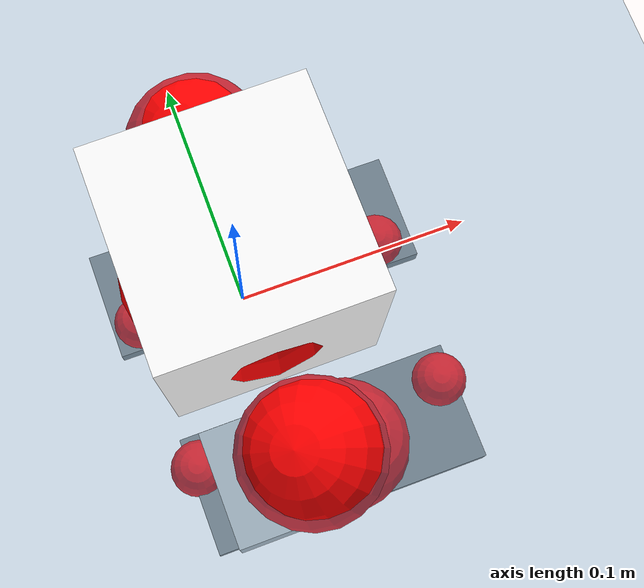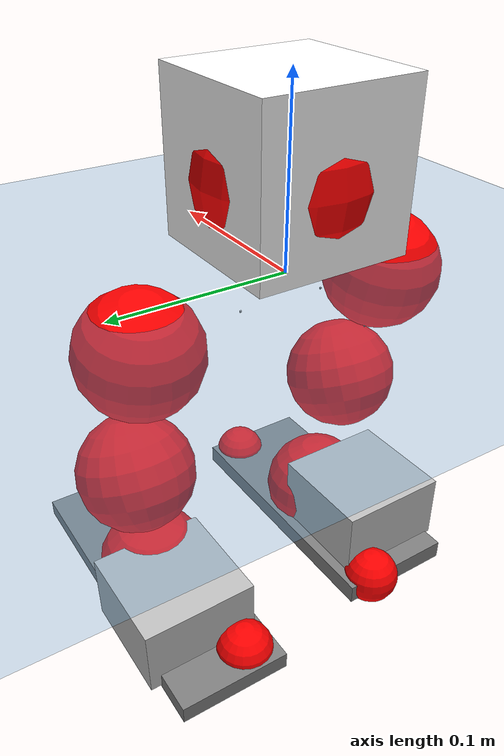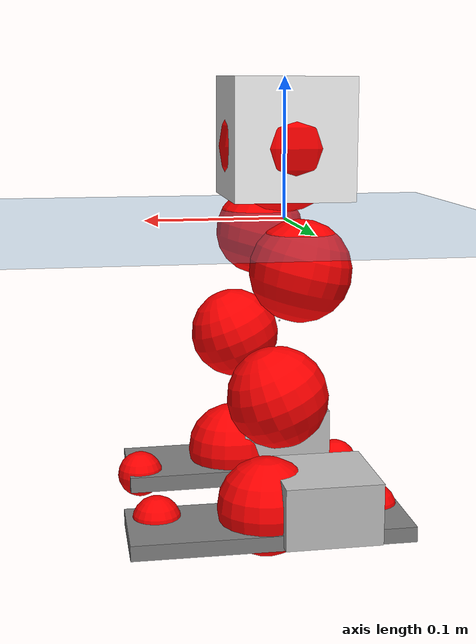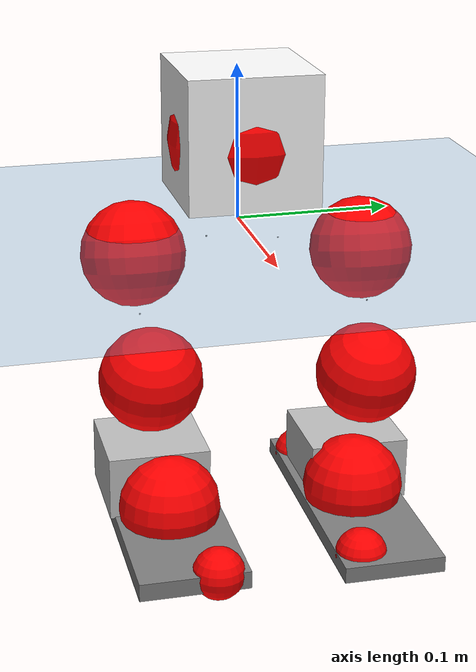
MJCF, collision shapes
<mujoco model="pi_12dof_release_v1">
  <compiler angle="radian" assetdir="assets" balanceinertia="true" inertiafromgeom="false"/>

  <option timestep="0.005" density="1.2" viscosity="2e-05"/>

  <size nkey="1"/>

  <visual>
    <quality shadowsize="8192"/>
    <map shadowclip="0.5"/>
  </visual>

  <default>
    <default class="/">
      <joint armature="0.01" damping="0.01" frictionloss="0.01"/>
      <geom contype="0" conaffinity="0" group="1" solref="-1000 -80"/>
      <site size="0.01 0.005 0.005" group="5"/>
      <general forcelimited="true" biastype="affine" gainprm="20" biasprm="0 -20 -0.5"/>
      <default class="foot">
        <geom size="0.0845 0.036 0.005" type="box" condim="6" group="4" priority="1" friction="0.9 0.2 0.2" solimp="0.015 1 0.005"/>
      </default>
      <default class="reward_collision_sphere">
        <geom group="5" rgba="1 0 0 1"/>
      </default>
    </default>
  </default>

  <asset>
    <texture type="skybox" colorspace="auto" name="//unnamed_texture_0" builtin="gradient" rgb1="0.95 0.95 0.95" rgb2="0.95 0.95 0.95" width="100" height="600"/>
    <texture type="2d" colorspace="auto" name="texplane" builtin="checker" rgb1="0.345 0.575 0.748" rgb2="0.345 0.575 0.748" markrgb="1 1 1" width="512" height="512"/>
    <material name="MatPlane" class="/" texture="texplane" texuniform="true" texrepeat="2 2" specular="0.9"/>
    <mesh name="baselink_1" class="/" file="baselink_1.STL"/>
    <mesh name="r_hip_pitch_link" class="/" file="r_hip_pitch_link.STL"/>
    <mesh name="r_hip_roll_link" class="/" file="r_hip_roll_link.STL"/>
    <mesh name="r_thigh_link" class="/" file="r_thigh_link.STL"/>
    <mesh name="r_calf_link" class="/" file="r_calf_link.STL"/>
    <mesh name="r_ankle_pitch_link" class="/" file="r_ankle_pitch_link.STL"/>
    <mesh name="r_ankle_roll_link" class="/" file="r_ankle_roll_link.STL"/>
    <mesh name="l_hip_pitch_link" class="/" file="l_hip_pitch_link.STL"/>
    <mesh name="l_hip_roll_link" class="/" file="l_hip_roll_link.STL"/>
    <mesh name="l_thigh_link" class="/" file="l_thigh_link.STL"/>
    <mesh name="l_calf_link" class="/" file="l_calf_link.STL"/>
    <mesh name="l_ankle_pitch_link" class="/" file="l_ankle_pitch_link.STL"/>
    <mesh name="l_ankle_roll_link" class="/" file="l_ankle_roll_link.STL"/>
  </asset>

  <worldbody>
    <geom name="floor" class="/" size="100 100 0.125" type="plane" group="0" material="MatPlane"/>
    <light name="toplight_shadow" class="/" pos="0 0 5" dir="0.0990148 0.0990148 -0.990148" type="directional" ambient="0.04 0.04 0.04" diffuse="0.55 0.55 0.55" specular="0.12 0.12 0.12"/>
    <light name="toplight_fill" class="/" pos="0 0 5" dir="0.0990148 0.0990148 -0.990148" type="directional" castshadow="false" ambient="0.04 0.04 0.04" diffuse="0.3 0.3 0.3" specular="0.08 0.08 0.08"/>
    <body name="trunk" pos="0.000867569 0.00123926 0.0107786" quat="0.999988 -0.00408982 -0.00120246 0.00238442">
      <inertial pos="0.00489435 -0.00817264 0.0251912" quat="0.664691 -0.00748015 -0.00325979 0.747074" mass="1.21423" diaginertia="0.0151192 0.00292199 0.000252245"/>
      <joint name="//unnamed_joint_0" type="free"/>
      <geom name="//unnamed_geom_1" class="/" type="mesh" density="0" rgba="1 1 1 1" mesh="baselink_1"/>
      <geom name="//unnamed_geom_2" class="/" size="0.0422912 0.0422912 0.0422912" pos="0 0 0.0468998" type="box" rgba="1 1 1 1"/>
      <geom name="//unnamed_geom_3" class="reward_collision_sphere" size="0.0465203" pos="0 0 0.0410373"/>
      <site name="imu" class="/" pos="-3.76966e-05 -0.0246747 0.0369364" size="0.00845823"/>
      <camera name="track" class="/" pos="0 -1.64617 0" quat="0.707107 0.707107 0 0" mode="trackcom"/>
      <camera name="ego_camera" class="/" pos="0.0846104 0 0.105524" quat="-0.5 -0.5 0.5 0.5"/>
      <body name="r_hip_pitch_link" pos="-0.00500828 -0.0210033 -0.0231174" quat="0.992181 -9.86637e-05 -0.124808 -0.000125674">
        <inertial pos="0.010296 -0.0477508 0.0102293" quat="-0.0692857 0.708009 -0.0137829 0.702661" mass="0.237566" diaginertia="0.000192354 3.98978e-05 6.13651e-06"/>
        <joint name="r_hip_pitch_joint" class="/" pos="0 0 0" axis="-0.0126048 -0.999911 -0.00446848" stiffness="0.0157428" range="-1.74463 1.26742" armature="0.00862683" damping="0.030417" frictionloss="0.00861923"/>
        <geom name="//unnamed_geom_4" class="/" type="mesh" density="0" rgba="0.75294 0.75294 0.75294 1" mesh="r_hip_pitch_link"/>
        <geom name="//unnamed_geom_5" class="/" size="0.000422912 0.000422912 0.000422912" type="box" rgba="0.75294 0.75294 0.75294 1"/>
        <body name="r_hip_roll_link" pos="0.00791425 -0.0498415 -0.00718242" quat="0.999999 0.0011519 0.000647938 -0.000482528">
          <inertial pos="0.00405502 -2.73558e-05 -0.0387613" quat="0.70231 -0.0832652 -0.0885223 0.701421" mass="0.258768" diaginertia="0.000675244 0.00011661 1.08142e-05"/>
          <joint name="r_hip_roll_joint" class="/" pos="0 0 0" axis="-0.99945 0.0313581 0.0108045" stiffness="0.0069827" range="-0.103432 0.463204" armature="0.0133297" damping="0.0124699" frictionloss="0.0062499"/>
          <geom name="//unnamed_geom_6" class="/" type="mesh" density="0" rgba="0.75294 0.75294 0.75294 1" mesh="r_hip_roll_link"/>
          <geom name="//unnamed_geom_7" class="/" size="0.000422912 0.000422912 0.000422912" type="box" rgba="0.75294 0.75294 0.75294 1"/>
          <geom name="//unnamed_geom_8" class="reward_collision_sphere" size="0.0338329"/>
          <body name="r_thigh_link" pos="-0.00422295 0.00249752 -0.0394774" quat="0.999999 0.000683207 -0.000853476 -0.00120599">
            <inertial pos="0.0120615 0.0110788 -0.0309873" quat="0.734803 0.678236 -0.00200209 -0.00747387" mass="0.0679219" diaginertia="0.000249862 3.55036e-05 3.85872e-06"/>
            <joint name="r_thigh_joint" class="/" pos="0 0 0" axis="6.0759e-06 -6.30672e-05 -1" range="-0.222946 0.42868" armature="0.0126885" damping="0" frictionloss="0.0083331"/>
            <geom name="//unnamed_geom_9" class="/" type="mesh" density="0" rgba="0.75294 0.75294 0.75294 1" mesh="r_thigh_link"/>
            <geom name="//unnamed_geom_10" class="/" size="0.000422912 0.000422912 0.000422912" type="box" rgba="0.75294 0.75294 0.75294 1"/>
            <body name="r_calf_link" pos="0.00447637 0.00366863 -0.0420911" quat="0.946286 -0.00342423 0.323311 0.00130991">
              <inertial pos="0.00219696 -6.65897e-05 -0.0386412" quat="0.998599 0.0212771 -0.0482159 -0.00478363" mass="0.433206" diaginertia="0.00657869 0.00131912 1.24348e-05"/>
              <joint name="r_calf_joint" class="/" pos="0 0 0" axis="-0.00193997 -0.999994 -0.00270968" stiffness="0.00790178" range="-1.6761 0.562455" armature="0.00826988" damping="0.0217467" frictionloss="0.00901726"/>
              <geom name="//unnamed_geom_11" class="/" type="mesh" density="0" rgba="0.75294 0.75294 0.75294 1" mesh="r_calf_link"/>
              <geom name="//unnamed_geom_12" class="/" size="0.000422912 0.000422912 0.000422912" type="box" rgba="0.75294 0.75294 0.75294 1"/>
              <geom name="//unnamed_geom_13" class="reward_collision_sphere" size="0.0338329"/>
              <body name="r_ankle_pitch_link" pos="-0.00124605 0.00539324 -0.0846477" quat="0.980304 -0.00105132 -0.197493 0.000198187">
                <inertial pos="0.00889746 0.00366267 0.00172823" quat="0.00782534 0.708467 -0.00379083 0.705691" mass="0.0968348" diaginertia="0.000574408 9.19236e-05 7.96023e-06"/>
                <joint name="r_ankle_pitch_joint" class="/" pos="0 0 0" axis="0.0247082 -0.999611 -0.0129574" range="-1.20849 0.514884" armature="0.00957403" damping="0" frictionloss="0.00864551"/>
                <geom name="//unnamed_geom_14" class="/" type="mesh" density="0" rgba="0.75294 0.75294 0.75294 1" mesh="r_ankle_pitch_link"/>
                <geom name="//unnamed_geom_15" class="/" size="0.0329871 0.0338329 0.0211456" type="box" rgba="0.75294 0.75294 0.75294 1"/>
                <body name="r_ankle_roll_link" pos="0.0952351 0.00486262 -0.000282373" quat="1 -5.45637e-05 2.04599e-05 -0.000144826">
                  <inertial pos="-0.026241 0.00961653 -0.0161971" quat="0.545751 0.455616 0.391297 0.584343" mass="0.349475" diaginertia="0.00226866 0.00038815 2.34764e-05"/>
                  <joint name="r_ankle_roll_joint" class="/" pos="0 0 0" axis="-0.99993 0.0117721 -0.00101552" range="0.0833017 0.052193" armature="0.0122154" damping="0.0175405" frictionloss="0.0126427"/>
                  <geom name="//unnamed_geom_16" class="/" type="mesh" density="0" rgba="0.75294 0.75294 0.75294 1" mesh="r_ankle_roll_link"/>
                  <geom name="//unnamed_geom_17" class="/" type="mesh" rgba="0.75294 0.75294 0.75294 1" mesh="r_ankle_roll_link"/>
                  <geom name="right_foot" class="foot" size="0.083307 0.0355975 0.00588356" pos="-0.0575351 0 -0.0257949"/>
                  <geom name="//unnamed_geom_19" class="reward_collision_sphere" size="0.0338329" pos="-0.056407 0 -0.0117249"/>
                  <geom name="//unnamed_geom_20" class="reward_collision_sphere" size="0.0169165" pos="0.0169221 0.0164617 -0.0234499"/>
                  <geom name="//unnamed_geom_21" class="reward_collision_sphere" size="0.0169165" pos="-0.135377 0.0164617 -0.0234499"/>
                  <site name="right_foot" class="foot" pos="-0.0575351 0 -0.0257949" size="0.00845823"/>
                </body>
              </body>
            </body>
          </body>
        </body>
      </body>
      <body name="l_hip_pitch_link" pos="0.000229049 0.0253761 -0.0258117" quat="0.992256 0.000239755 -0.124205 0.000673511">
        <inertial pos="0.0024892 0.054007 0.0106257" quat="-0.049428 0.703416 0.0368791 0.708098" mass="0.246747" diaginertia="0.000260551 4.06721e-05 8.06998e-06"/>
        <joint name="l_hip_pitch_joint" class="/" pos="0 0 0" axis="-0.0308362 0.999085 -0.0296299" stiffness="0.0322273" range="-1.03594 1.83686" armature="0.00821172" damping="0.0401311" frictionloss="0.00664227"/>
        <geom name="//unnamed_geom_22" class="/" type="mesh" density="0" rgba="0.75294 0.75294 0.75294 1" mesh="l_hip_pitch_link"/>
        <geom name="//unnamed_geom_23" class="/" size="0.000422912 0.000422912 0.000422912" type="box" rgba="0.75294 0.75294 0.75294 1"/>
        <body name="l_hip_roll_link" pos="0.00231693 0.0552724 -0.0103865" quat="0.999994 -0.00321432 -0.000745841 0.000783348">
          <inertial pos="-0.0137435 0.00693049 -0.0243435" quat="0.699482 -0.0754884 -0.0771447 0.706452" mass="0.195548" diaginertia="0.000454022 8.98175e-05 6.97651e-06"/>
          <joint name="l_hip_roll_joint" class="/" pos="0 0 0" axis="-0.999994 -0.00176636 -0.00290592" stiffness="0.00674467" range="-0.495652 0.214463" armature="0.0109451" damping="0" frictionloss="0.00836961"/>
          <geom name="//unnamed_geom_24" class="/" type="mesh" density="0" rgba="0.75294 0.75294 0.75294 1" mesh="l_hip_roll_link"/>
          <geom name="//unnamed_geom_25" class="/" size="0.000422912 0.000422912 0.000422912" type="box" rgba="0.75294 0.75294 0.75294 1"/>
          <geom name="//unnamed_geom_26" class="reward_collision_sphere" size="0.0338329"/>
          <body name="l_thigh_link" pos="0.00556408 0.00120004 -0.0347136" quat="0.999993 -0.00278572 0.00246022 9.01802e-06">
            <inertial pos="0.0104792 -0.00722916 -0.0169341" quat="0.645383 0.763471 0.0116616 0.0213779" mass="0.0752973" diaginertia="0.000247958 4.06577e-05 4.16871e-06"/>
            <joint name="l_thigh_joint" class="/" pos="0 0 0" axis="0.00161648 0.000739447 -0.999998" stiffness="0.0019529" range="-0.640938 0.27623" armature="0.00918322" damping="0.00920614" frictionloss="0.00372899"/>
            <geom name="//unnamed_geom_27" class="/" type="mesh" density="0" rgba="0.75294 0.75294 0.75294 1" mesh="l_thigh_link"/>
            <geom name="//unnamed_geom_28" class="/" size="0.000422912 0.000422912 0.000422912" type="box" rgba="0.75294 0.75294 0.75294 1"/>
            <body name="l_calf_link" pos="-0.0118203 0.00135771 -0.0501872" quat="0.947752 0.000236391 0.319007 0.000213814">
              <inertial pos="0.00811741 0.00820726 -0.0466747" quat="0.998726 0.0158198 -0.0423524 0.0224147" mass="0.48994" diaginertia="0.00486613 0.00116869 9.89141e-06"/>
              <joint name="l_calf_joint" class="/" pos="0 0 0" axis="-0.0143214 0.999764 0.0163605" stiffness="0.0394202" range="-0.47586 1.45947" armature="0.00814072" damping="0.0345405" frictionloss="0.00605224"/>
              <geom name="//unnamed_geom_29" class="/" type="mesh" density="0" rgba="0.75294 0.75294 0.75294 1" mesh="l_calf_link"/>
              <geom name="//unnamed_geom_30" class="/" size="0.000422912 0.000422912 0.000422912" type="box" rgba="0.75294 0.75294 0.75294 1"/>
              <geom name="//unnamed_geom_31" class="reward_collision_sphere" size="0.0338329"/>
              <body name="l_ankle_pitch_link" pos="-0.000997515 -0.00144749 -0.0811385" quat="0.97998 0.000253302 -0.199095 0.00017992">
                <inertial pos="0.00230861 0.00359761 0.00901095" quat="-0.00655347 0.692957 -0.0191684 0.720694" mass="0.12402" diaginertia="0.000512317 8.38247e-05 8.40032e-06"/>
                <joint name="l_ankle_pitch_joint" class="/" pos="0 0 0" axis="-0.00138795 0.999996 0.00232399" range="-0.389269 1.34228" armature="0.00999755" damping="0.0629502" frictionloss="0.0116368"/>
                <geom name="//unnamed_geom_32" class="/" type="mesh" density="0" rgba="0.75294 0.75294 0.75294 1" mesh="l_ankle_pitch_link"/>
                <geom name="//unnamed_geom_33" class="/" size="0.0329871 0.0338329 0.0211456" type="box" rgba="0.75294 0.75294 0.75294 1"/>
                <body name="l_ankle_roll_link" pos="0.0947715 -0.00712359 0.00705053" quat="0.999982 0.00433037 0.00084208 -0.00402444">
                  <inertial pos="-0.0293149 -0.00121411 -0.0104523" quat="0.570203 0.461266 0.432624 0.524346" mass="0.293633" diaginertia="0.00192408 0.000344727 2.05925e-05"/>
                  <joint name="l_ankle_roll_joint" class="/" pos="0 0 0" axis="-0.999991 -0.0019651 -0.00382602" stiffness="0.000371155" range="-0.148101 0.387997" armature="0.00833406" damping="0.0375446" frictionloss="0.0100883"/>
                  <geom name="//unnamed_geom_34" class="/" type="mesh" density="0" rgba="0.75294 0.75294 0.75294 1" mesh="l_ankle_roll_link"/>
                  <geom name="//unnamed_geom_35" class="/" type="mesh" rgba="0.75294 0.75294 0.75294 1" mesh="l_ankle_roll_link"/>
                  <geom name="left_foot" class="foot" size="0.0956819 0.033098 0.00526825" pos="-0.0575351 0 -0.0257949"/>
                  <geom name="//unnamed_geom_37" class="reward_collision_sphere" size="0.0338329" pos="-0.056407 0 -0.0117249"/>
                  <geom name="//unnamed_geom_38" class="reward_collision_sphere" size="0.0169165" pos="0.0169221 -0.0164617 -0.0234499"/>
                  <geom name="//unnamed_geom_39" class="reward_collision_sphere" size="0.0169165" pos="-0.135377 -0.0164617 -0.0234499"/>
                  <site name="left_foot" class="foot" pos="-0.0575351 0 -0.0257949" size="0.00845823"/>
                </body>
              </body>
            </body>
          </body>
        </body>
      </body>
    </body>
  </worldbody>

  <contact>
    <pair class="/" geom1="floor" geom2="right_foot" name="//unnamed_contact_1"/>
    <pair class="/" geom1="floor" geom2="left_foot" name="//unnamed_contact_0"/>
  </contact>

  <actuator>
    <general name="r_hip_pitch_joint" class="/" joint="r_hip_pitch_joint" forcerange="-12.0323 12.0323" gainprm="21.9162" biasprm="0 -21.9162 -0.521573"/>
    <general name="r_hip_roll_joint" class="/" joint="r_hip_roll_joint" forcerange="-25.3617 25.3617" gainprm="21.9162" biasprm="0 -21.9162 -0.521573"/>
    <general name="r_thigh_joint" class="/" joint="r_thigh_joint" forcerange="-17.0225 17.0225" gainprm="21.9162" biasprm="0 -21.9162 -0.521573"/>
    <general name="r_calf_joint" class="/" joint="r_calf_joint" forcerange="-9.85323 9.85323" gainprm="21.9162" biasprm="0 -21.9162 -0.521573"/>
    <general name="r_ankle_pitch_joint" class="/" joint="r_ankle_pitch_joint" forcerange="-19.8941 19.8941" gainprm="21.9162" biasprm="0 -21.9162 -0.521573"/>
    <general name="r_ankle_roll_joint" class="/" joint="r_ankle_roll_joint" forcerange="-25.2586 25.2586" gainprm="21.9162" biasprm="0 -21.9162 -0.521573"/>
    <general name="l_hip_pitch_joint" class="/" joint="l_hip_pitch_joint" forcerange="-17.0192 17.0192" gainprm="21.9162" biasprm="0 -21.9162 -0.521573"/>
    <general name="l_hip_roll_joint" class="/" joint="l_hip_roll_joint" forcerange="-17.8438 17.8438" gainprm="21.9162" biasprm="0 -21.9162 -0.521573"/>
    <general name="l_thigh_joint" class="/" joint="l_thigh_joint" forcerange="-14.5972 14.5972" gainprm="21.9162" biasprm="0 -21.9162 -0.521573"/>
    <general name="l_calf_joint" class="/" joint="l_calf_joint" forcerange="-17.5347 17.5347" gainprm="21.9162" biasprm="0 -21.9162 -0.521573"/>
    <general name="l_ankle_pitch_joint" class="/" joint="l_ankle_pitch_joint" forcerange="-14.7855 14.7855" gainprm="21.9162" biasprm="0 -21.9162 -0.521573"/>
    <general name="l_ankle_roll_joint" class="/" joint="l_ankle_roll_joint" forcerange="-16.6368 16.6368" gainprm="21.9162" biasprm="0 -21.9162 -0.521573"/>
  </actuator>

  <sensor>
    <gyro site="imu" name="imu_angular_velocity"/>
    <velocimeter site="imu" name="imu_linear_velocity"/>
    <framelinvel objtype="site" objname="left_foot" name="left_foot_global_linear_velocity"/>
    <framelinvel objtype="site" objname="right_foot" name="right_foot_global_linear_velocity"/>
  </sensor>

  <keyframe>
    <key name="home" qpos="0 0 0.291 1 0 0 0 0.4 0 0 -0.8 0.4 0 -0.4 0 0 0.8 -0.4 0"/>
  </keyframe>
</mujoco>
